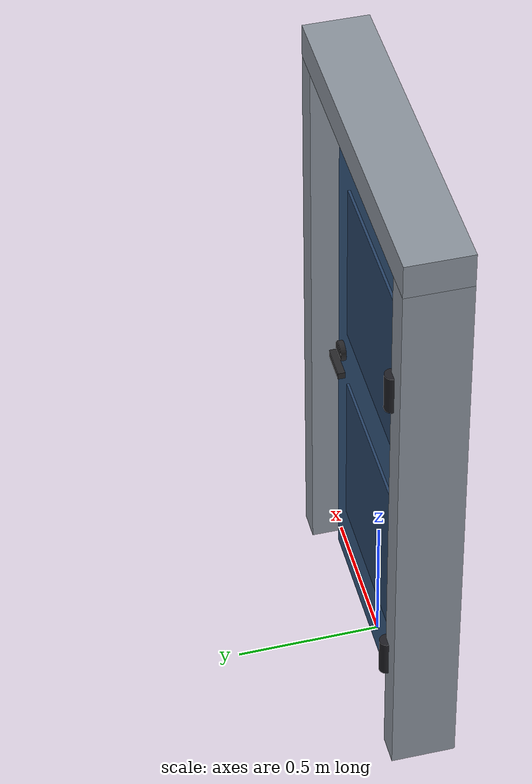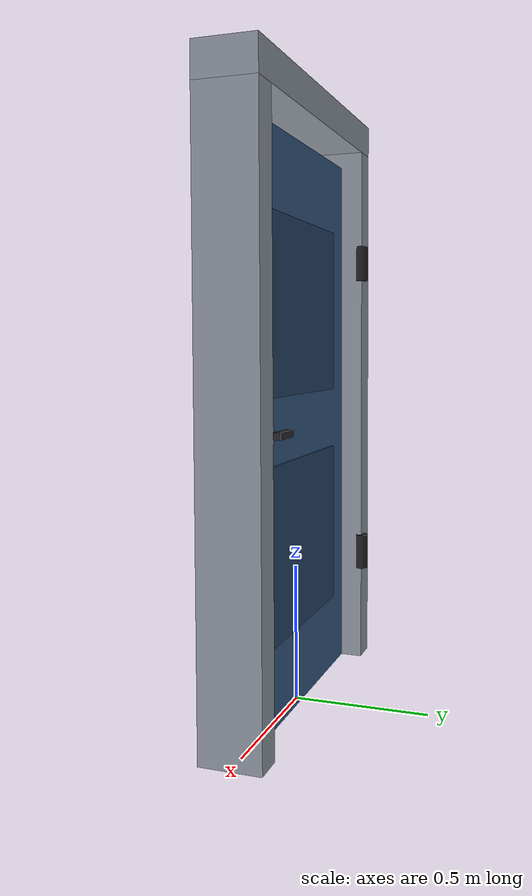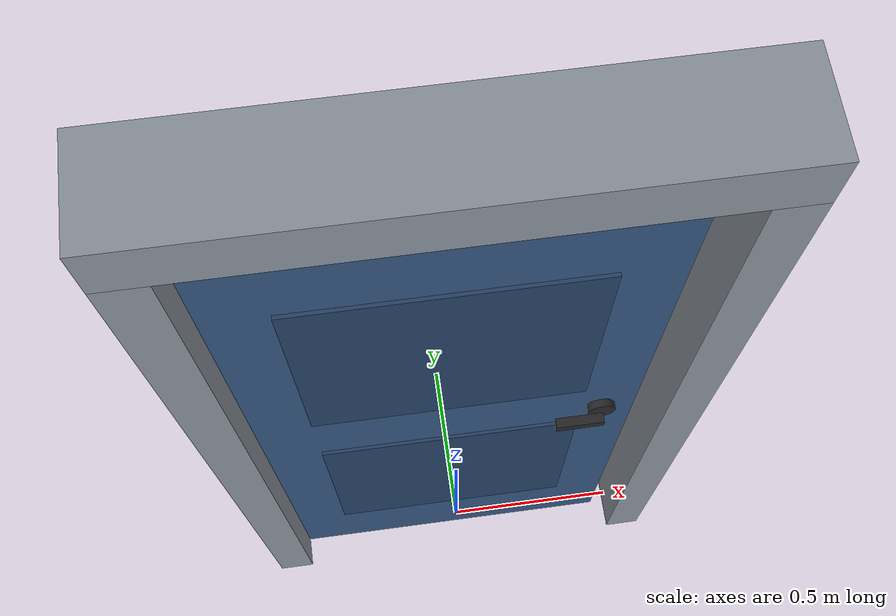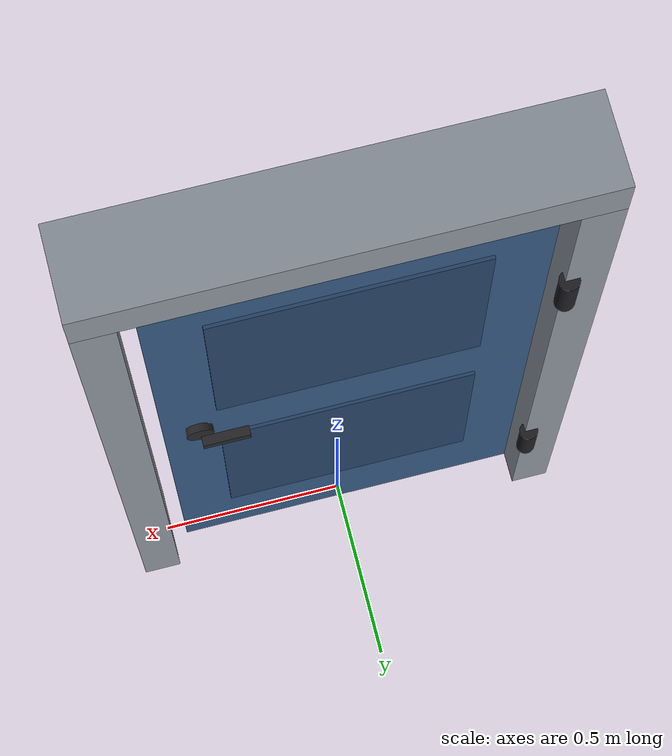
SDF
<?xml version="1.0" ?>
<sdf version="1.6">
  <model name="puerta_cerrada">
    <static>true</static>

    <!-- ============ MARCO (jambas + dintel) ============ -->
    <link name="marco">
      <pose>0 0 0 0 0 0</pose>

      <!-- Jamba izquierda -->
      <visual name="jamba_izq_vis">
        <pose>-0.54 0 1.05 0 0 0</pose>
        <geometry><box><size>0.10 0.22 2.10</size></box></geometry>
        <material>
          <ambient>0.34 0.36 0.40 1</ambient>
          <diffuse>0.55 0.58 0.62 1</diffuse>
          <specular>0.45 0.45 0.45 1</specular>
          <pbr><metal><metalness>0.85</metalness><roughness>0.40</roughness></metal></pbr>
        </material>
      </visual>
      <collision name="jamba_izq_col">
        <pose>-0.54 0 1.05 0 0 0</pose>
        <geometry><box><size>0.10 0.22 2.10</size></box></geometry>
      </collision>

      <!-- Jamba derecha -->
      <visual name="jamba_der_vis">
        <pose>0.54 0 1.05 0 0 0</pose>
        <geometry><box><size>0.10 0.22 2.10</size></box></geometry>
        <material>
          <ambient>0.34 0.36 0.40 1</ambient>
          <diffuse>0.55 0.58 0.62 1</diffuse>
          <specular>0.45 0.45 0.45 1</specular>
          <pbr><metal><metalness>0.85</metalness><roughness>0.40</roughness></metal></pbr>
        </material>
      </visual>
      <collision name="jamba_der_col">
        <pose>0.54 0 1.05 0 0 0</pose>
        <geometry><box><size>0.10 0.22 2.10</size></box></geometry>
      </collision>

      <!-- Dintel (parte superior) -->
      <visual name="dintel_vis">
        <pose>0 0 2.16 0 0 0</pose>
        <geometry><box><size>1.18 0.22 0.12</size></box></geometry>
        <material>
          <ambient>0.34 0.36 0.40 1</ambient>
          <diffuse>0.55 0.58 0.62 1</diffuse>
          <specular>0.45 0.45 0.45 1</specular>
          <pbr><metal><metalness>0.85</metalness><roughness>0.40</roughness></metal></pbr>
        </material>
      </visual>
      <collision name="dintel_col">
        <pose>0 0 2.16 0 0 0</pose>
        <geometry><box><size>1.18 0.22 0.12</size></box></geometry>
      </collision>

      <!-- Bisagras (lado izquierdo, eje x=-0.5) -->
      <visual name="bisagra_inf">
        <pose>-0.50 0.11 0.45 0 0 0</pose>
        <geometry><cylinder><radius>0.025</radius><length>0.14</length></cylinder></geometry>
        <material>
          <ambient>0.05 0.05 0.06 1</ambient>
          <diffuse>0.12 0.12 0.14 1</diffuse>
          <specular>0.6 0.6 0.6 1</specular>
          <pbr><metal><metalness>0.95</metalness><roughness>0.25</roughness></metal></pbr>
        </material>
      </visual>
      <visual name="bisagra_sup">
        <pose>-0.50 0.11 1.65 0 0 0</pose>
        <geometry><cylinder><radius>0.025</radius><length>0.14</length></cylinder></geometry>
        <material>
          <ambient>0.05 0.05 0.06 1</ambient>
          <diffuse>0.12 0.12 0.14 1</diffuse>
          <specular>0.6 0.6 0.6 1</specular>
          <pbr><metal><metalness>0.95</metalness><roughness>0.25</roughness></metal></pbr>
        </material>
      </visual>
    </link>

    <!-- ============ HOJA (puerta) ============ -->
    <!-- CERRADA: pose centro = (-0.02, 0), yaw = 0 -->
    <link name="hoja">
      <pose>-0.02 0 0 0 0 0</pose>

      <!-- Cuerpo principal de la hoja -->
      <visual name="hoja_vis">
        <pose>0 0 1.02 0 0 0</pose>
        <geometry><box><size>0.94 0.05 2.04</size></box></geometry>
        <material>
          <ambient>0.10 0.16 0.24 1</ambient>
          <diffuse>0.20 0.34 0.50 1</diffuse>
          <specular>0.25 0.25 0.25 1</specular>
          <pbr><metal><metalness>0.55</metalness><roughness>0.55</roughness></metal></pbr>
        </material>
      </visual>
      <collision name="hoja_col">
        <pose>0 0 1.02 0 0 0</pose>
        <geometry><box><size>0.94 0.05 2.04</size></box></geometry>
      </collision>

      <!-- Panel decorativo superior (relieve, cara +Y) -->
      <visual name="panel_sup_a">
        <pose>0 0.028 1.45 0 0 0</pose>
        <geometry><box><size>0.66 0.012 0.62</size></box></geometry>
        <material>
          <ambient>0.07 0.12 0.18 1</ambient>
          <diffuse>0.15 0.26 0.40 1</diffuse>
          <specular>0.2 0.2 0.2 1</specular>
        </material>
      </visual>
      <!-- Panel decorativo inferior (relieve, cara +Y) -->
      <visual name="panel_inf_a">
        <pose>0 0.028 0.60 0 0 0</pose>
        <geometry><box><size>0.66 0.012 0.62</size></box></geometry>
        <material>
          <ambient>0.07 0.12 0.18 1</ambient>
          <diffuse>0.15 0.26 0.40 1</diffuse>
          <specular>0.2 0.2 0.2 1</specular>
        </material>
      </visual>
      <!-- Panel decorativo superior (relieve, cara -Y) -->
      <visual name="panel_sup_b">
        <pose>0 -0.028 1.45 0 0 0</pose>
        <geometry><box><size>0.66 0.012 0.62</size></box></geometry>
        <material>
          <ambient>0.07 0.12 0.18 1</ambient>
          <diffuse>0.15 0.26 0.40 1</diffuse>
          <specular>0.2 0.2 0.2 1</specular>
        </material>
      </visual>
      <!-- Panel decorativo inferior (relieve, cara -Y) -->
      <visual name="panel_inf_b">
        <pose>0 -0.028 0.60 0 0 0</pose>
        <geometry><box><size>0.66 0.012 0.62</size></box></geometry>
        <material>
          <ambient>0.07 0.12 0.18 1</ambient>
          <diffuse>0.15 0.26 0.40 1</diffuse>
          <specular>0.2 0.2 0.2 1</specular>
        </material>
      </visual>

      <!-- Manilla tipo palanca (lado opuesto a bisagra, x≈+0.38) cara +Y -->
      <visual name="manilla_roseta_a">
        <pose>0.38 0.04 1.02 1.5708 0 0</pose>
        <geometry><cylinder><radius>0.035</radius><length>0.02</length></cylinder></geometry>
        <material>
          <ambient>0.06 0.06 0.06 1</ambient>
          <diffuse>0.15 0.15 0.16 1</diffuse>
          <specular>0.7 0.7 0.7 1</specular>
          <pbr><metal><metalness>0.95</metalness><roughness>0.20</roughness></metal></pbr>
        </material>
      </visual>
      <visual name="manilla_palanca_a">
        <pose>0.32 0.07 1.02 0 0 0</pose>
        <geometry><box><size>0.12 0.025 0.025</size></box></geometry>
        <material>
          <ambient>0.06 0.06 0.06 1</ambient>
          <diffuse>0.15 0.15 0.16 1</diffuse>
          <specular>0.7 0.7 0.7 1</specular>
          <pbr><metal><metalness>0.95</metalness><roughness>0.20</roughness></metal></pbr>
        </material>
      </visual>
      <!-- Manilla cara -Y -->
      <visual name="manilla_roseta_b">
        <pose>0.38 -0.04 1.02 1.5708 0 0</pose>
        <geometry><cylinder><radius>0.035</radius><length>0.02</length></cylinder></geometry>
        <material>
          <ambient>0.06 0.06 0.06 1</ambient>
          <diffuse>0.15 0.15 0.16 1</diffuse>
          <specular>0.7 0.7 0.7 1</specular>
          <pbr><metal><metalness>0.95</metalness><roughness>0.20</roughness></metal></pbr>
        </material>
      </visual>
      <visual name="manilla_palanca_b">
        <pose>0.32 -0.07 1.02 0 0 0</pose>
        <geometry><box><size>0.12 0.025 0.025</size></box></geometry>
        <material>
          <ambient>0.06 0.06 0.06 1</ambient>
          <diffuse>0.15 0.15 0.16 1</diffuse>
          <specular>0.7 0.7 0.7 1</specular>
          <pbr><metal><metalness>0.95</metalness><roughness>0.20</roughness></metal></pbr>
        </material>
      </visual>
    </link>
  </model>
</sdf>
